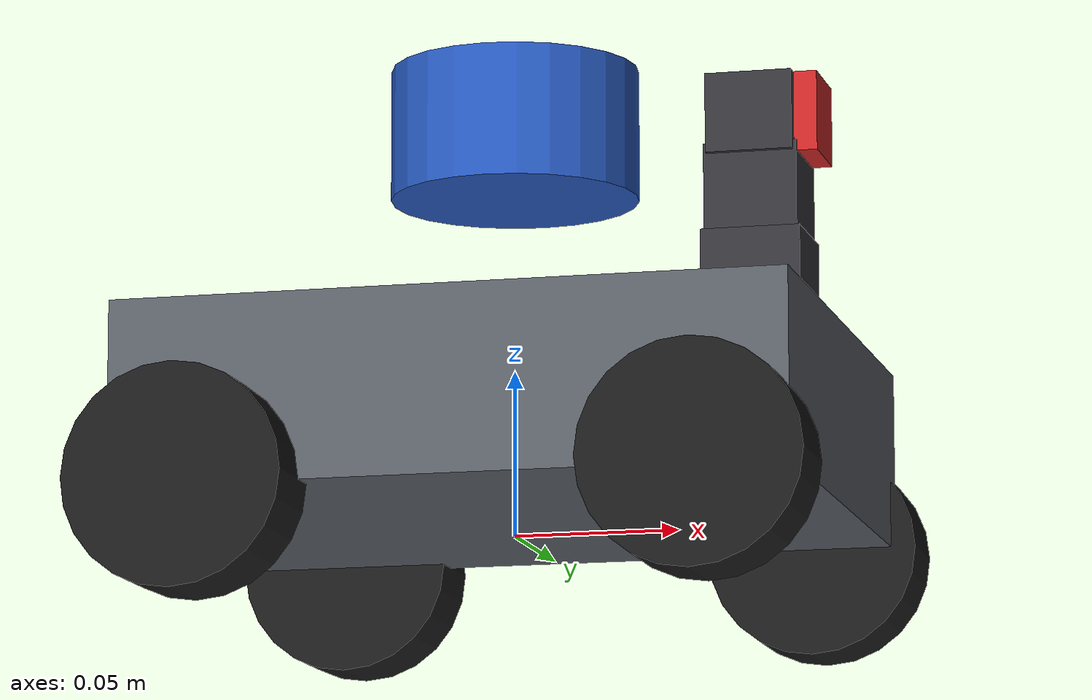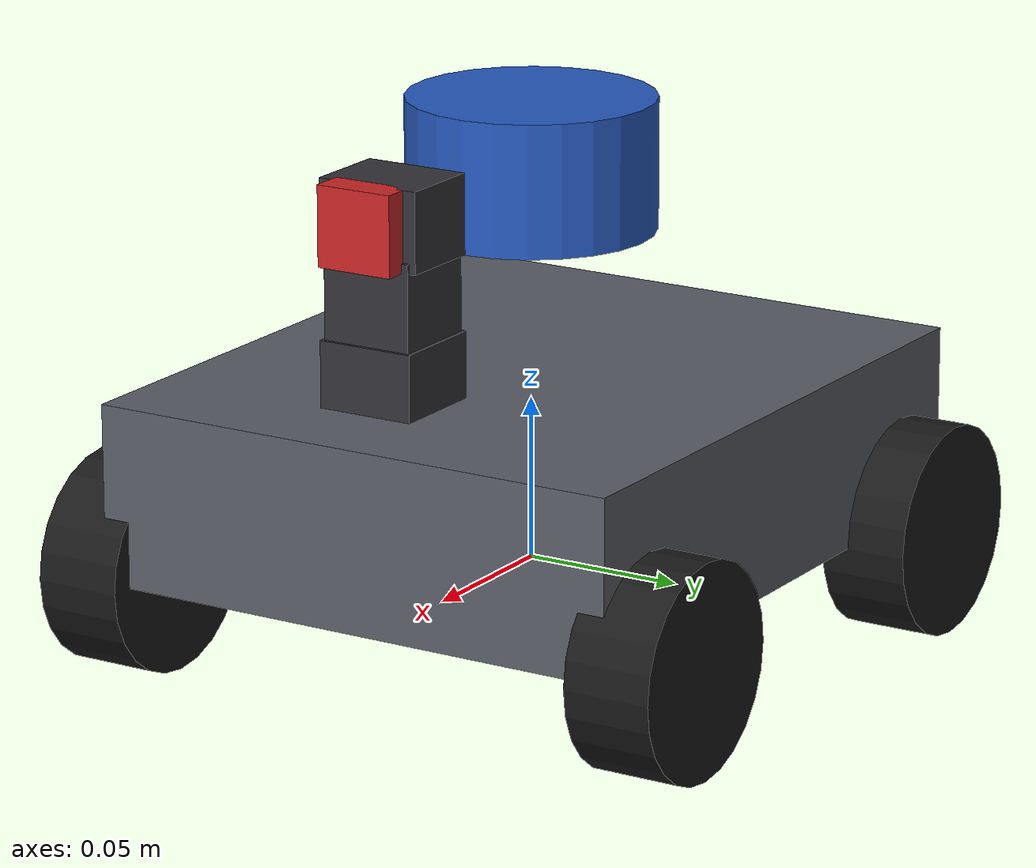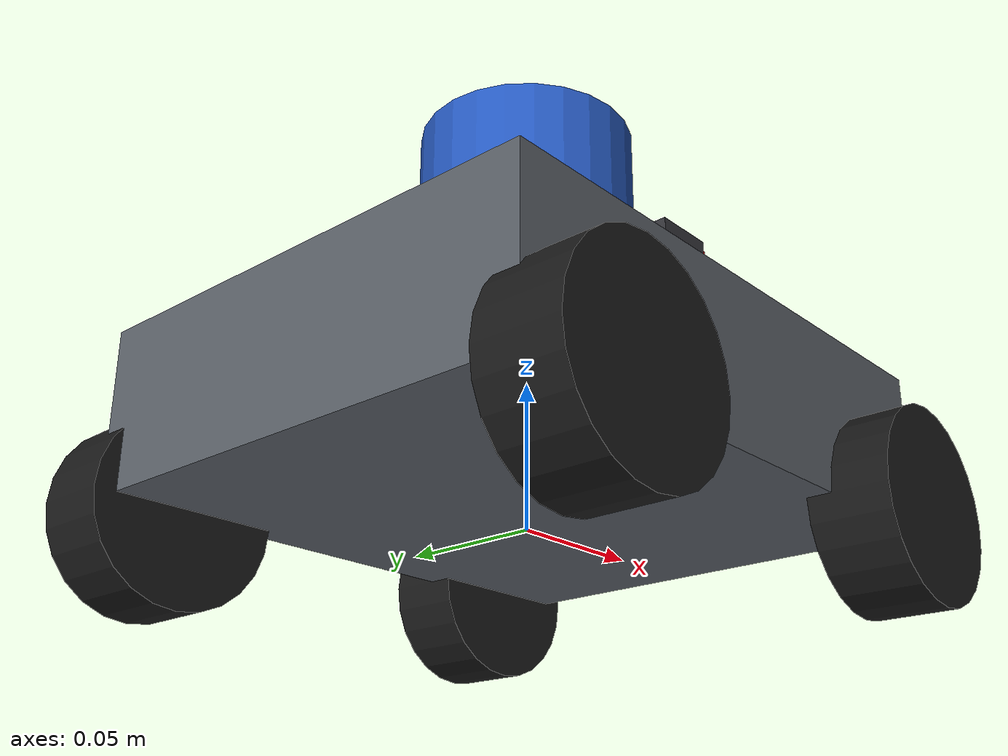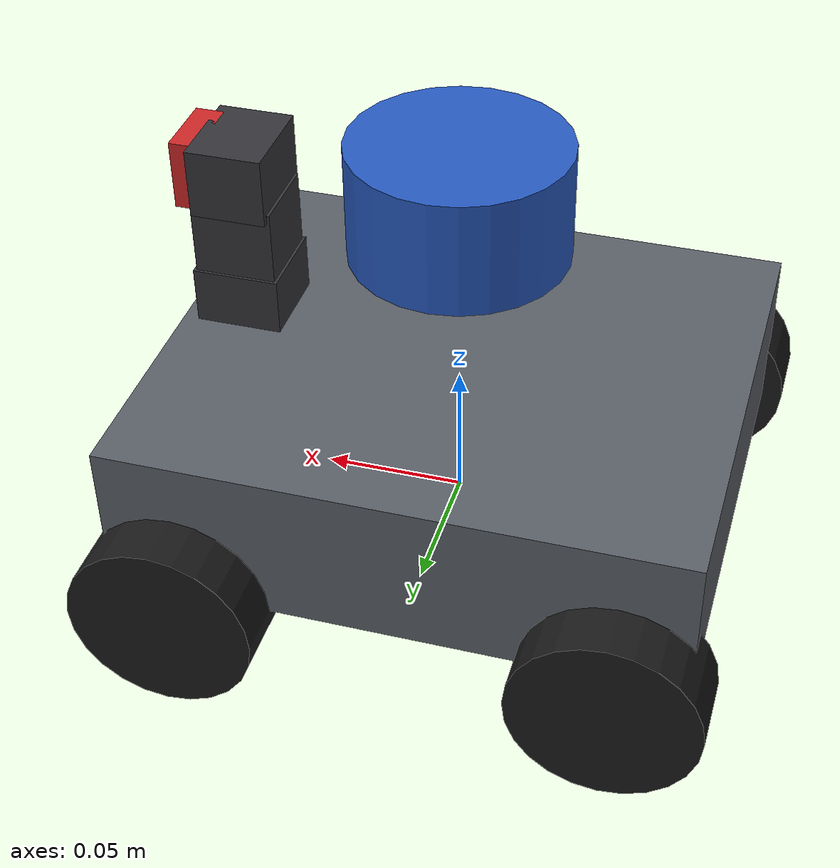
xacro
<?xml version="1.0"?>
<robot xmlns:xacro="http://www.ros.org/wiki/xacro" name="microros_pi5">

  <xacro:include filename="$(find microros_pi5_description)/urdf/inertial_macros.xacro"/>

  <!--  PHYSICAL PARAMETERS   (single source of truth - edit here only)  -->

  <!-- Chassis (aluminium plate stack, lidar and Pi excluded) -->
  <xacro:property name="base_length" value="0.200"/>
  <xacro:property name="base_width"  value="0.170"/>
  <xacro:property name="base_height" value="0.055"/>
  <xacro:property name="base_mass"   value="1.500"/>

  <!-- Wheels: 65 mm diameter rubber tyre on a 370 encoder motor -->
  <xacro:property name="wheel_radius" value="0.0325"/>
  <xacro:property name="wheel_width"  value="0.0270"/>
  <xacro:property name="wheel_mass"   value="0.100"/>

  <!-- Track (left-right centre distance) and wheelbase (front-rear centre distance).
       These two numbers ARE your odometry calibration - get them right. -->
  <xacro:property name="wheel_separation" value="0.180"/>
  <xacro:property name="wheel_base"       value="0.150"/>

  <!-- Sensor mounting offsets, relative to base_link -->
  <xacro:property name="lidar_xyz"  value="0.0 0.0 0.090"/>
  <xacro:property name="imu_xyz"    value="0.0 0.0 0.010"/>
  <xacro:property name="gimbal_xyz" value="0.075 0.0 0.045"/>

  <!-- Derived -->
  <xacro:property name="half_track" value="${wheel_separation / 2.0}"/>
  <xacro:property name="half_base"  value="${wheel_base / 2.0}"/>
  <xacro:property name="PI"         value="3.14159265359"/>

  <!--  MATERIALS                                                        -->

  <material name="chassis_grey"><color rgba="0.35 0.37 0.40 1.0"/></material>
  <material name="tyre_black">  <color rgba="0.10 0.10 0.10 1.0"/></material>
  <material name="lidar_blue">  <color rgba="0.15 0.35 0.75 1.0"/></material>
  <material name="sensor_dark"> <color rgba="0.20 0.20 0.22 1.0"/></material>
  <material name="accent_red">  <color rgba="0.80 0.15 0.15 1.0"/></material>

  <!--  BASE                                                             -->

  <link name="base_footprint"/>

  <joint name="base_footprint_joint" type="fixed">
    <parent link="base_footprint"/>
    <child  link="base_link"/>
    <origin xyz="0 0 ${wheel_radius}" rpy="0 0 0"/>
  </joint>

  <link name="base_link">
    <visual>
      <origin xyz="0 0 0" rpy="0 0 0"/>
      <geometry><box size="${base_length} ${base_width} ${base_height}"/></geometry>
      <material name="chassis_grey"/>
    </visual>
    <collision>
      <origin xyz="0 0 0" rpy="0 0 0"/>
      <geometry><box size="${base_length} ${base_width} ${base_height}"/></geometry>
    </collision>
    <xacro:inertial_box mass="${base_mass}" x="${base_length}" y="${base_width}" z="${base_height}">
      <origin xyz="0 0 0" rpy="0 0 0"/>
    </xacro:inertial_box>
  </link>

  <!--  WHEELS                                                           -->
  <xacro:macro name="wheel" params="prefix reflect_x reflect_y">
    <link name="${prefix}_wheel_link">
      <visual>
        <origin xyz="0 0 0" rpy="${PI/2} 0 0"/>
        <geometry><cylinder radius="${wheel_radius}" length="${wheel_width}"/></geometry>
        <material name="tyre_black"/>
      </visual>
      <collision>
        <origin xyz="0 0 0" rpy="${PI/2} 0 0"/>
        <geometry><cylinder radius="${wheel_radius}" length="${wheel_width}"/></geometry>
      </collision>
      <xacro:inertial_cylinder mass="${wheel_mass}" radius="${wheel_radius}" length="${wheel_width}">
        <origin xyz="0 0 0" rpy="${PI/2} 0 0"/>
      </xacro:inertial_cylinder>
    </link>

    <joint name="${prefix}_wheel_joint" type="continuous">
      <parent link="base_link"/>
      <child  link="${prefix}_wheel_link"/>
      <origin xyz="${reflect_x * half_base} ${reflect_y * half_track} ${-base_height/2}" rpy="0 0 0"/>
      <axis xyz="0 1 0"/>
      <dynamics damping="0.01" friction="0.001"/>
    </joint>
  </xacro:macro>

  <xacro:wheel prefix="front_left"  reflect_x="1"  reflect_y="1"/>
  <xacro:wheel prefix="front_right" reflect_x="1"  reflect_y="-1"/>
  <xacro:wheel prefix="rear_left"   reflect_x="-1" reflect_y="1"/>
  <xacro:wheel prefix="rear_right"  reflect_x="-1" reflect_y="-1"/>

  <!--  IMU  (on the ESP32-S3 control board, 6-axis)                     -->

  <link name="imu_frame">
    <visual>
      <geometry><box size="0.015 0.015 0.004"/></geometry>
      <material name="accent_red"/>
    </visual>
    <xacro:inertial_box mass="0.005" x="0.015" y="0.015" z="0.004">
      <origin xyz="0 0 0" rpy="0 0 0"/>
    </xacro:inertial_box>
  </link>

  <joint name="imu_joint" type="fixed">
    <parent link="base_link"/>
    <child  link="imu_frame"/>
    <origin xyz="${imu_xyz}" rpy="0 0 0"/>
  </joint>

  <!--  MS200 LIDAR                                                      -->

  <link name="laser_frame">
    <visual>
      <origin xyz="0 0 0" rpy="0 0 0"/>
      <geometry><cylinder radius="0.0375" length="0.040"/></geometry>
      <material name="lidar_blue"/>
    </visual>
    <collision>
      <origin xyz="0 0 0" rpy="0 0 0"/>
      <geometry><cylinder radius="0.0375" length="0.040"/></geometry>
    </collision>
    <xacro:inertial_cylinder mass="0.100" radius="0.0375" length="0.040">
      <origin xyz="0 0 0" rpy="0 0 0"/>
    </xacro:inertial_cylinder>
  </link>

  <joint name="laser_joint" type="fixed">
    <parent link="base_link"/>
    <child  link="laser_frame"/>
    <origin xyz="${lidar_xyz}" rpy="0 0 0"/>
  </joint>

  <!--  2-DOF CAMERA GIMBAL                                              -->

  <link name="gimbal_base_link">
    <visual>
      <geometry><box size="0.030 0.030 0.020"/></geometry>
      <material name="sensor_dark"/>
    </visual>
    <xacro:inertial_box mass="0.030" x="0.030" y="0.030" z="0.020">
      <origin xyz="0 0 0" rpy="0 0 0"/>
    </xacro:inertial_box>
  </link>

  <joint name="gimbal_base_joint" type="fixed">
    <parent link="base_link"/>
    <child  link="gimbal_base_link"/>
    <origin xyz="${gimbal_xyz}" rpy="0 0 0"/>
  </joint>

  <link name="gimbal_yaw_link">
    <visual>
      <geometry><box size="0.028 0.028 0.026"/></geometry>
      <material name="sensor_dark"/>
    </visual>
    <xacro:inertial_box mass="0.025" x="0.028" y="0.028" z="0.026">
      <origin xyz="0 0 0" rpy="0 0 0"/>
    </xacro:inertial_box>
  </link>

  <joint name="gimbal_yaw_joint" type="revolute">
    <parent link="gimbal_base_link"/>
    <child  link="gimbal_yaw_link"/>
    <origin xyz="0 0 0.023" rpy="0 0 0"/>
    <axis xyz="0 0 1"/>
    <limit lower="${-PI/2}" upper="${PI/2}" effort="1.5" velocity="3.0"/>
  </joint>

  <link name="gimbal_pitch_link">
    <visual>
      <geometry><box size="0.026 0.032 0.024"/></geometry>
      <material name="sensor_dark"/>
    </visual>
    <xacro:inertial_box mass="0.025" x="0.026" y="0.032" z="0.024">
      <origin xyz="0 0 0" rpy="0 0 0"/>
    </xacro:inertial_box>
  </link>

  <joint name="gimbal_pitch_joint" type="revolute">
    <parent link="gimbal_yaw_link"/>
    <child  link="gimbal_pitch_link"/>
    <origin xyz="0 0 0.022" rpy="0 0 0"/>
    <axis xyz="0 1 0"/>
    <limit lower="${-PI/2}" upper="${PI/2}" effort="1.5" velocity="3.0"/>
  </joint>

  <!-- 2 MP camera carried by the gimbal -->
  <link name="camera_link">
    <visual>
      <geometry><box size="0.010 0.024 0.024"/></geometry>
      <material name="accent_red"/>
    </visual>
    <xacro:inertial_box mass="0.015" x="0.010" y="0.024" z="0.024">
      <origin xyz="0 0 0" rpy="0 0 0"/>
    </xacro:inertial_box>
  </link>

  <joint name="camera_joint" type="fixed">
    <parent link="gimbal_pitch_link"/>
    <child  link="camera_link"/>
    <origin xyz="0.015 0 0" rpy="0 0 0"/>
  </joint>

  <!-- REP-103 optical frame: z forward, x right, y down.
       image_pipeline / vision nodes expect THIS frame, not camera_link. -->
  <link name="camera_optical_link"/>

  <joint name="camera_optical_joint" type="fixed">
    <parent link="camera_link"/>
    <child  link="camera_optical_link"/>
    <origin xyz="0 0 0" rpy="${-PI/2} 0 ${-PI/2}"/>
  </joint>

</robot>

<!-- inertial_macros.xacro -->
<robot xmlns:xacro="http://www.ros.org/wiki/xacro">

  <!-- Standard solid-body inertia tensors.
       Using real tensors (instead of the identity matrix everybody copy-pastes) keeps
       Gazebo/Ignition stable later and costs nothing now. -->

  <xacro:macro name="inertial_box" params="mass x y z *origin">
    <inertial>
      <xacro:insert_block name="origin"/>
      <mass value="${mass}"/>
      <inertia
        ixx="${(mass / 12.0) * (y*y + z*z)}" ixy="0.0" ixz="0.0"
        iyy="${(mass / 12.0) * (x*x + z*z)}" iyz="0.0"
        izz="${(mass / 12.0) * (x*x + y*y)}"/>
    </inertial>
  </xacro:macro>

  <!-- Cylinder whose symmetry axis is Z. Wheels are modelled rotated onto Y by their joint. -->
  <xacro:macro name="inertial_cylinder" params="mass radius length *origin">
    <inertial>
      <xacro:insert_block name="origin"/>
      <mass value="${mass}"/>
      <inertia
        ixx="${(mass / 12.0) * (3.0*radius*radius + length*length)}" ixy="0.0" ixz="0.0"
        iyy="${(mass / 12.0) * (3.0*radius*radius + length*length)}" iyz="0.0"
        izz="${(mass / 2.0) * radius * radius}"/>
    </inertial>
  </xacro:macro>

  <xacro:macro name="inertial_sphere" params="mass radius *origin">
    <inertial>
      <xacro:insert_block name="origin"/>
      <mass value="${mass}"/>
      <inertia
        ixx="${(2.0/5.0) * mass * radius * radius}" ixy="0.0" ixz="0.0"
        iyy="${(2.0/5.0) * mass * radius * radius}" iyz="0.0"
        izz="${(2.0/5.0) * mass * radius * radius}"/>
    </inertial>
  </xacro:macro>

</robot>
